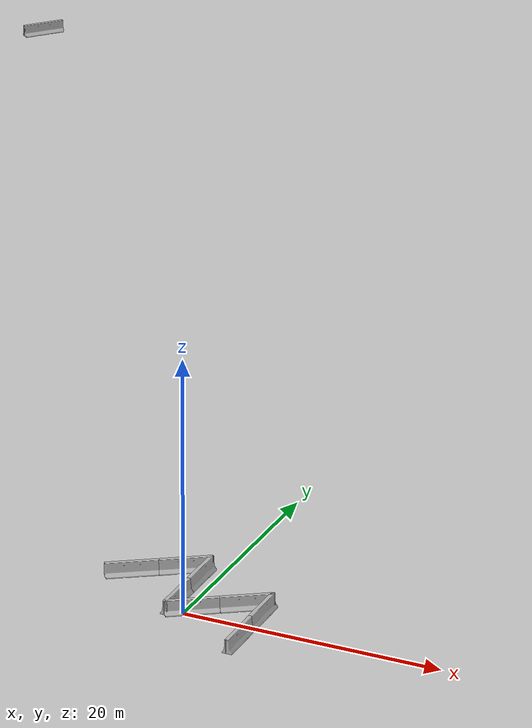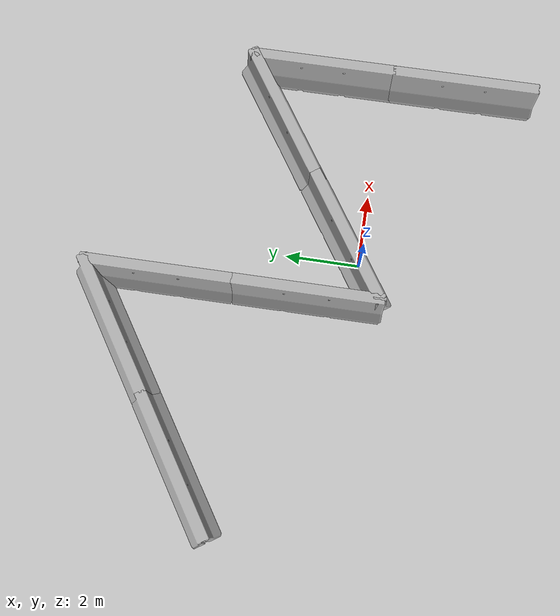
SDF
<sdf version="1.6">
 <world name="default">
  <light name="sun" type="directional">
   <pose>0 0 10 0 -0 0</pose>
   <diffuse>0.8 0.8 0.8 1</diffuse>
   <specular>0.2 0.2 0.2 1</specular>
   <attenuation>
    <range>1000</range>
    <constant>0.9</constant>
    <linear>0.01</linear>
    <quadratic>0.001</quadratic>
   </attenuation>
   <direction>-0.5 0.1 -0.9</direction>
  </light>
  <model name="ground_plane">
   <static>1</static>
   <link name="link">
    <collision name="collision">
     <geometry><plane><normal>0 0 1</normal><size>100 100</size></plane></geometry>
     <surface><friction><ode><mu>100</mu><mu2>50</mu2></ode></friction></surface>
    </collision>
    <visual name="visual">
     <cast_shadows>0</cast_shadows>
     <geometry><plane><normal>0 0 1</normal><size>100 100</size></plane></geometry>
     <material>
      <script><uri>file://media/materials/scripts/gazebo.material</uri><name>Gazebo/Grey</name></script>
     </material>
    </visual>
   </link>
  </model>
  <gravity>0 0 -9.8</gravity>
  <magnetic_field>6e-06 2.3e-05 -4.2e-05</magnetic_field>
  <atmosphere type="adiabatic"/>
  <physics name="default_physics" default="0" type="ode">
   <max_step_size>0.001</max_step_size>
   <real_time_factor>1</real_time_factor>
   <real_time_update_rate>1000</real_time_update_rate>
  </physics>
  <scene><ambient>0.4 0.4 0.4 1</ambient><background>0.7 0.7 0.7 1</background><shadows>1</shadows></scene>
  <spherical_coordinates>
   <surface_model>EARTH_WGS84</surface_model>
   <latitude_deg>0</latitude_deg>
   <longitude_deg>0</longitude_deg>
   <elevation>0</elevation>
   <heading_deg>0</heading_deg>
  </spherical_coordinates>
  <model name="jersey_barrier_clone">
   <static>1</static>
   <link name="link">
    <visual name="visual">
     <geometry><mesh><uri>model://jersey_barrier/meshes/jersey_barrier.dae</uri></mesh></geometry>
    </visual>
    <collision name="upright">
     <pose>0 0 0.5715 0 -0 0</pose>
     <geometry><box><size>4.06542 0.3063 1.143</size></box></geometry>
    </collision>
    <collision name="base">
     <pose>0 0 0.032258 0 -0 0</pose>
     <geometry><box><size>4.06542 0.8107 0.064516</size></box></geometry>
    </collision>
    <collision name="base2">
     <pose>0 0 0.1 0 -0 0</pose>
     <geometry><box><size>4.06542 0.65 0.1</size></box></geometry>
    </collision>
    <collision name="base3">
     <pose>0 0 0.2 0 -0 0</pose>
     <geometry><box><size>4.06542 0.5 0.1</size></box></geometry>
    </collision>
    <collision name="left-angle">
     <pose>0 -0.224 0.2401 0.9 -0 0</pose>
     <geometry><box><size>4.06542 0.5 0.064516</size></box></geometry>
    </collision>
    <collision name="right-angle">
     <pose>0 0.224 0.2401 -0.9 0 0</pose>
     <geometry><box><size>4.06542 0.5 0.064516</size></box></geometry>
    </collision>
   </link>
   <pose>3.81498 2.62826 0 0 -0 0.580732</pose>
  </model>
  <model name="jersey_barrier_clone_0">
   <static>1</static>
   <link name="link">
    <visual name="visual">
     <geometry><mesh><uri>model://jersey_barrier/meshes/jersey_barrier.dae</uri></mesh></geometry>
    </visual>
    <collision name="upright">
     <pose>0 0 0.5715 0 -0 0</pose>
     <geometry><box><size>4.06542 0.3063 1.143</size></box></geometry>
    </collision>
    <collision name="base">
     <pose>0 0 0.032258 0 -0 0</pose>
     <geometry><box><size>4.06542 0.8107 0.064516</size></box></geometry>
    </collision>
    <collision name="base2">
     <pose>0 0 0.1 0 -0 0</pose>
     <geometry><box><size>4.06542 0.65 0.1</size></box></geometry>
    </collision>
    <collision name="base3">
     <pose>0 0 0.2 0 -0 0</pose>
     <geometry><box><size>4.06542 0.5 0.1</size></box></geometry>
    </collision>
    <collision name="left-angle">
     <pose>0 -0.224 0.2401 0.9 -0 0</pose>
     <geometry><box><size>4.06542 0.5 0.064516</size></box></geometry>
    </collision>
    <collision name="right-angle">
     <pose>0 0.224 0.2401 -0.9 0 0</pose>
     <geometry><box><size>4.06542 0.5 0.064516</size></box></geometry>
    </collision>
   </link>
   <pose>-65.3147 104.671 0.186132 0 -0 0.866047</pose>
  </model>
  <model name="jersey_barrier_clone_3">
   <static>1</static>
   <link name="link">
    <visual name="visual">
     <geometry><mesh><uri>model://jersey_barrier/meshes/jersey_barrier.dae</uri></mesh></geometry>
    </visual>
    <collision name="upright">
     <pose>0 0 0.5715 0 -0 0</pose>
     <geometry><box><size>4.06542 0.3063 1.143</size></box></geometry>
    </collision>
    <collision name="base">
     <pose>0 0 0.032258 0 -0 0</pose>
     <geometry><box><size>4.06542 0.8107 0.064516</size></box></geometry>
    </collision>
    <collision name="base2">
     <pose>0 0 0.1 0 -0 0</pose>
     <geometry><box><size>4.06542 0.65 0.1</size></box></geometry>
    </collision>
    <collision name="base3">
     <pose>0 0 0.2 0 -0 0</pose>
     <geometry><box><size>4.06542 0.5 0.1</size></box></geometry>
    </collision>
    <collision name="left-angle">
     <pose>0 -0.224 0.2401 0.9 -0 0</pose>
     <geometry><box><size>4.06542 0.5 0.064516</size></box></geometry>
    </collision>
    <collision name="right-angle">
     <pose>0 0.224 0.2401 -0.9 0 0</pose>
     <geometry><box><size>4.06542 0.5 0.064516</size></box></geometry>
    </collision>
   </link>
   <pose>5.38504 1.73346 0 0 0 -1.56865</pose>
  </model>
  <model name="jersey_barrier_clone_3_clone">
   <static>1</static>
   <link name="link">
    <visual name="visual">
     <geometry><mesh><uri>model://jersey_barrier/meshes/jersey_barrier.dae</uri></mesh></geometry>
    </visual>
    <collision name="upright">
     <pose>0 0 0.5715 0 -0 0</pose>
     <geometry><box><size>4.06542 0.3063 1.143</size></box></geometry>
    </collision>
    <collision name="base">
     <pose>0 0 0.032258 0 -0 0</pose>
     <geometry><box><size>4.06542 0.8107 0.064516</size></box></geometry>
    </collision>
    <collision name="base2">
     <pose>0 0 0.1 0 -0 0</pose>
     <geometry><box><size>4.06542 0.65 0.1</size></box></geometry>
    </collision>
    <collision name="base3">
     <pose>0 0 0.2 0 -0 0</pose>
     <geometry><box><size>4.06542 0.5 0.1</size></box></geometry>
    </collision>
    <collision name="left-angle">
     <pose>0 -0.224 0.2401 0.9 -0 0</pose>
     <geometry><box><size>4.06542 0.5 0.064516</size></box></geometry>
    </collision>
    <collision name="right-angle">
     <pose>0 0.224 0.2401 -0.9 0 0</pose>
     <geometry><box><size>4.06542 0.5 0.064516</size></box></geometry>
    </collision>
   </link>
   <pose>5.39063 -2.20205 0 0 0 -1.56865</pose>
  </model>
  <model name="jersey_barrier_clone_3_clone_clone">
   <static>1</static>
   <link name="link">
    <visual name="visual">
     <geometry><mesh><uri>model://jersey_barrier/meshes/jersey_barrier.dae</uri></mesh></geometry>
    </visual>
    <collision name="upright">
     <pose>0 0 0.5715 0 -0 0</pose>
     <geometry><box><size>4.06542 0.3063 1.143</size></box></geometry>
    </collision>
    <collision name="base">
     <pose>0 0 0.032258 0 -0 0</pose>
     <geometry><box><size>4.06542 0.8107 0.064516</size></box></geometry>
    </collision>
    <collision name="base2">
     <pose>0 0 0.1 0 -0 0</pose>
     <geometry><box><size>4.06542 0.65 0.1</size></box></geometry>
    </collision>
    <collision name="base3">
     <pose>0 0 0.2 0 -0 0</pose>
     <geometry><box><size>4.06542 0.5 0.1</size></box></geometry>
    </collision>
    <collision name="left-angle">
     <pose>0 -0.224 0.2401 0.9 -0 0</pose>
     <geometry><box><size>4.06542 0.5 0.064516</size></box></geometry>
    </collision>
    <collision name="right-angle">
     <pose>0 0.224 0.2401 -0.9 0 0</pose>
     <geometry><box><size>4.06542 0.5 0.064516</size></box></geometry>
    </collision>
   </link>
   <pose>-1.12542 1.26189 0 0 0 -1.56865</pose>
  </model>
  <model name="jersey_barrier_clone_clone">
   <static>1</static>
   <link name="link">
    <visual name="visual">
     <geometry><mesh><uri>model://jersey_barrier/meshes/jersey_barrier.dae</uri></mesh></geometry>
    </visual>
    <collision name="upright">
     <pose>0 0 0.5715 0 -0 0</pose>
     <geometry><box><size>4.06542 0.3063 1.143</size></box></geometry>
    </collision>
    <collision name="base">
     <pose>0 0 0.032258 0 -0 0</pose>
     <geometry><box><size>4.06542 0.8107 0.064516</size></box></geometry>
    </collision>
    <collision name="base2">
     <pose>0 0 0.1 0 -0 0</pose>
     <geometry><box><size>4.06542 0.65 0.1</size></box></geometry>
    </collision>
    <collision name="base3">
     <pose>0 0 0.2 0 -0 0</pose>
     <geometry><box><size>4.06542 0.5 0.1</size></box></geometry>
    </collision>
    <collision name="left-angle">
     <pose>0 -0.224 0.2401 0.9 -0 0</pose>
     <geometry><box><size>4.06542 0.5 0.064516</size></box></geometry>
    </collision>
    <collision name="right-angle">
     <pose>0 0.224 0.2401 -0.9 0 0</pose>
     <geometry><box><size>4.06542 0.5 0.064516</size></box></geometry>
    </collision>
   </link>
   <pose>0.477775 0.428924 0 0 -0 0.580732</pose>
  </model>
  <model name="jersey_barrier_clone_3_clone_clone_0">
   <static>1</static>
   <link name="link">
    <visual name="visual">
     <geometry><mesh><uri>model://jersey_barrier/meshes/jersey_barrier.dae</uri></mesh></geometry>
    </visual>
    <collision name="upright">
     <pose>0 0 0.5715 0 -0 0</pose>
     <geometry><box><size>4.06542 0.3063 1.143</size></box></geometry>
    </collision>
    <collision name="base">
     <pose>0 0 0.032258 0 -0 0</pose>
     <geometry><box><size>4.06542 0.8107 0.064516</size></box></geometry>
    </collision>
    <collision name="base2">
     <pose>0 0 0.1 0 -0 0</pose>
     <geometry><box><size>4.06542 0.65 0.1</size></box></geometry>
    </collision>
    <collision name="base3">
     <pose>0 0 0.2 0 -0 0</pose>
     <geometry><box><size>4.06542 0.5 0.1</size></box></geometry>
    </collision>
    <collision name="left-angle">
     <pose>0 -0.224 0.2401 0.9 -0 0</pose>
     <geometry><box><size>4.06542 0.5 0.064516</size></box></geometry>
    </collision>
    <collision name="right-angle">
     <pose>0 0.224 0.2401 -0.9 0 0</pose>
     <geometry><box><size>4.06542 0.5 0.064516</size></box></geometry>
    </collision>
   </link>
   <pose>-1.13528 5.24389 0 0 0 -1.56865</pose>
  </model>
  <model name="jersey_barrier_clone_clone_clone">
   <static>1</static>
   <link name="link">
    <visual name="visual">
     <geometry><mesh><uri>model://jersey_barrier/meshes/jersey_barrier.dae</uri></mesh></geometry>
    </visual>
    <collision name="upright">
     <pose>0 0 0.5715 0 -0 0</pose>
     <geometry><box><size>4.06542 0.3063 1.143</size></box></geometry>
    </collision>
    <collision name="base">
     <pose>0 0 0.032258 0 -0 0</pose>
     <geometry><box><size>4.06542 0.8107 0.064516</size></box></geometry>
    </collision>
    <collision name="base2">
     <pose>0 0 0.1 0 -0 0</pose>
     <geometry><box><size>4.06542 0.65 0.1</size></box></geometry>
    </collision>
    <collision name="base3">
     <pose>0 0 0.2 0 -0 0</pose>
     <geometry><box><size>4.06542 0.5 0.1</size></box></geometry>
    </collision>
    <collision name="left-angle">
     <pose>0 -0.224 0.2401 0.9 -0 0</pose>
     <geometry><box><size>4.06542 0.5 0.064516</size></box></geometry>
    </collision>
    <collision name="right-angle">
     <pose>0 0.224 0.2401 -0.9 0 0</pose>
     <geometry><box><size>4.06542 0.5 0.064516</size></box></geometry>
    </collision>
   </link>
   <pose>-2.73582 6.11717 0 0 -0 0.580732</pose>
  </model>
  <model name="jersey_barrier_clone_clone_0">
   <static>1</static>
   <link name="link">
    <visual name="visual">
     <geometry><mesh><uri>model://jersey_barrier/meshes/jersey_barrier.dae</uri></mesh></geometry>
    </visual>
    <collision name="upright">
     <pose>0 0 0.5715 0 -0 0</pose>
     <geometry><box><size>4.06542 0.3063 1.143</size></box></geometry>
    </collision>
    <collision name="base">
     <pose>0 0 0.032258 0 -0 0</pose>
     <geometry><box><size>4.06542 0.8107 0.064516</size></box></geometry>
    </collision>
    <collision name="base2">
     <pose>0 0 0.1 0 -0 0</pose>
     <geometry><box><size>4.06542 0.65 0.1</size></box></geometry>
    </collision>
    <collision name="base3">
     <pose>0 0 0.2 0 -0 0</pose>
     <geometry><box><size>4.06542 0.5 0.1</size></box></geometry>
    </collision>
    <collision name="left-angle">
     <pose>0 -0.224 0.2401 0.9 -0 0</pose>
     <geometry><box><size>4.06542 0.5 0.064516</size></box></geometry>
    </collision>
    <collision name="right-angle">
     <pose>0 0.224 0.2401 -0.9 0 0</pose>
     <geometry><box><size>4.06542 0.5 0.064516</size></box></geometry>
    </collision>
   </link>
   <pose>-6.04824 3.94844 0 0 -0 0.580732</pose>
  </model>
 </world>
</sdf>
